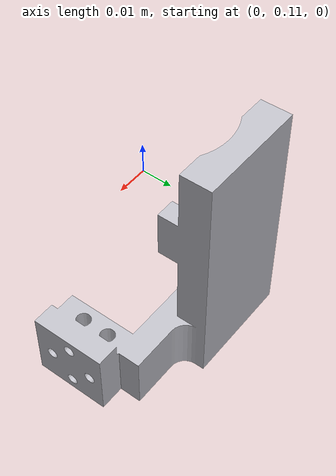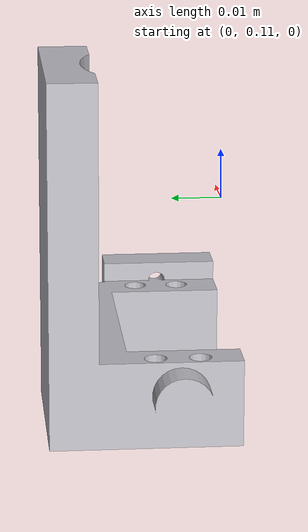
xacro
<?xml version="1.0" ?>
<robot name="(Unsaved)" xmlns:xacro="http://www.ros.org/wiki/xacro">

<xacro:include filename="$(find (Unsaved)_description)/urdf/materials.xacro" />
<xacro:include filename="$(find (Unsaved)_description)/urdf/(Unsaved).trans" />
<xacro:include filename="$(find (Unsaved)_description)/urdf/(Unsaved).gazebo" />
<link name="base_link">
  <inertial>
    <origin rpy="0 0 0" xyz="0.006749713210000586 0.1347191084484993 -0.021008971950554338"/>
    <mass value="0.32619992407275533"/>
    <inertia ixx="0.00019" ixy="2.5e-05" ixz="3.5e-05" iyy="0.000269" iyz="-3.5e-05" izz="0.000147"/>
  </inertial>
  <visual>
    <origin rpy="0 0 0" xyz="0 0 0"/>
    <geometry>
      <mesh filename="package://(Unsaved)_description/meshes/base_link.stl" scale="0.001 0.001 0.001"/>
    </geometry>
    <material name="silver"/>
  </visual>
  <collision>
    <origin rpy="0 0 0" xyz="0 0 0"/>
    <geometry>
      <mesh filename="package://(Unsaved)_description/meshes/base_link.stl" scale="0.001 0.001 0.001"/>
    </geometry>
  </collision>
</link>

</robot>

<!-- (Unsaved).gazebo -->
<robot name="(Unsaved)" xmlns:xacro="http://www.ros.org/wiki/xacro" >

<xacro:property name="body_color" value="Gazebo/Silver" />

<gazebo>
  <plugin filename="libgazebo_ros_control.so" name="control"/>
</gazebo>
<gazebo reference="base_link">
  <material>${body_color}</material>
  <mu1>0.2</mu1>
  <mu2>0.2</mu2>
  <selfCollide>true</selfCollide>
  <gravity>true</gravity>
</gazebo>

</robot>
